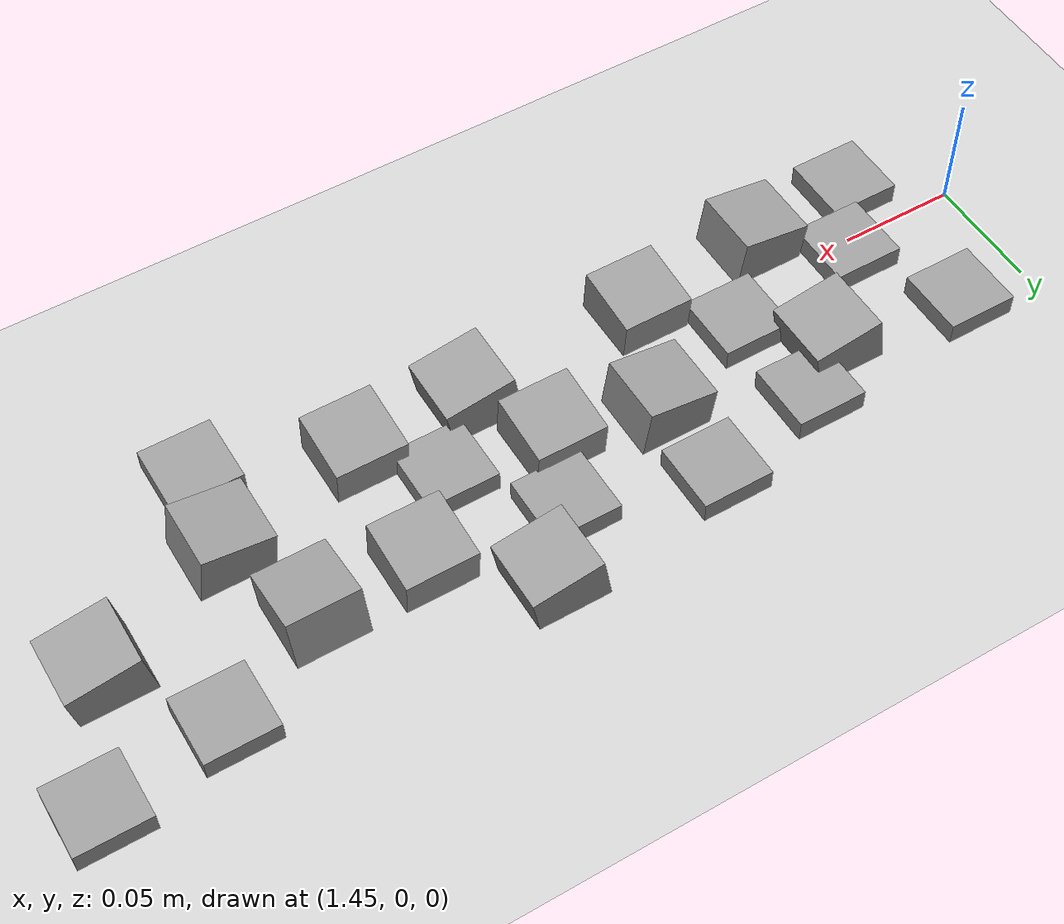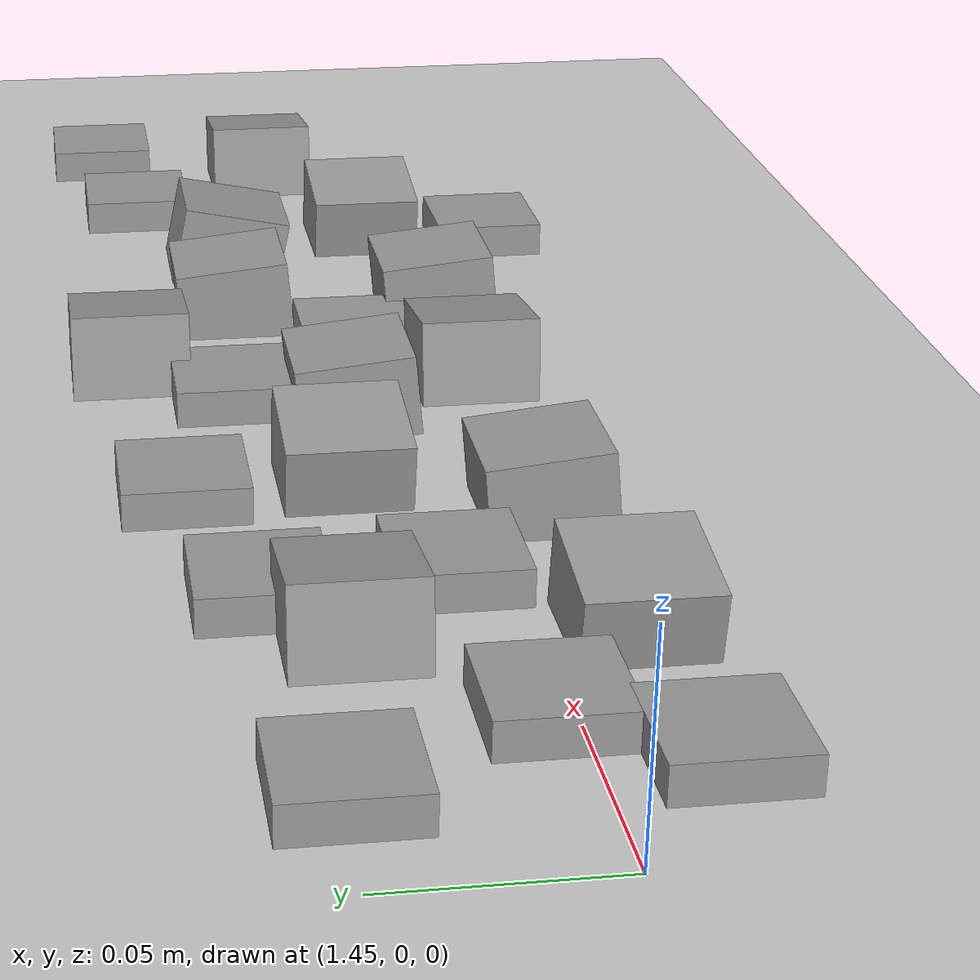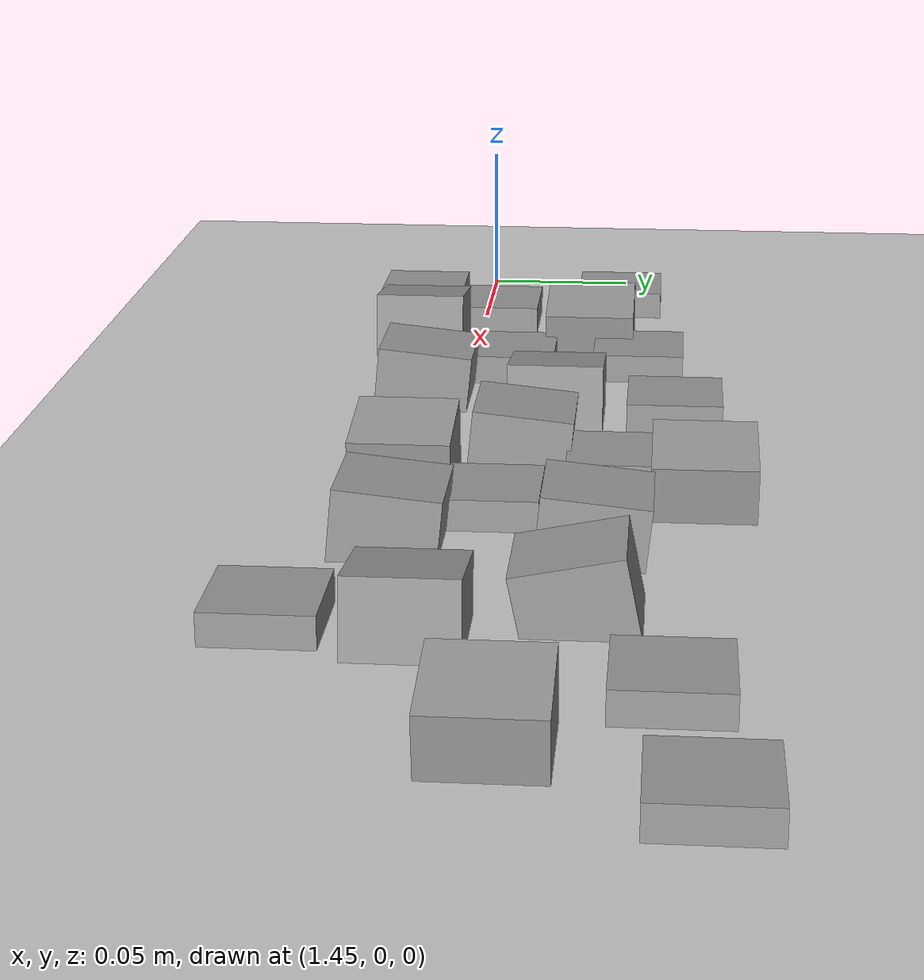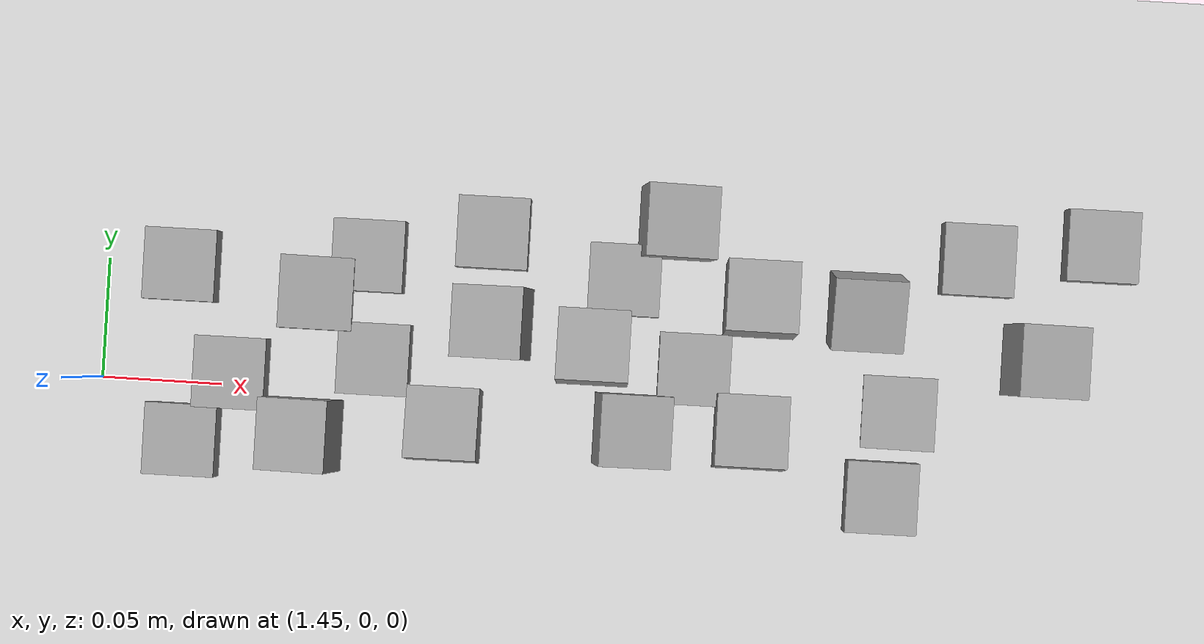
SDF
<sdf version="1.7">
 <world name="default">
  <model name="ground_plane">
   <static>1</static>
   <link name="link">
    <collision name="collision">
     <geometry><plane><normal>0 0 1</normal><size>100 100</size></plane></geometry>
     <surface><friction><ode><mu>100</mu><mu2>50</mu2></ode></friction></surface>
    </collision>
    <visual name="visual">
     <cast_shadows>0</cast_shadows>
     <geometry><plane><normal>0 0 1</normal><size>100 100</size></plane></geometry>
     <material>
      <script><uri>file://media/materials/scripts/gazebo.material</uri><name>Gazebo/Grey</name></script>
     </material>
    </visual>
   </link>
  </model>
  <model name="stone_road">
   <link name="link_0_clone_2_clone">
    <inertial>
     <mass>1</mass>
     <inertia>
      <ixx>0.166667</ixx>
      <ixy>0</ixy>
      <ixz>0</ixz>
      <iyy>0.166667</iyy>
      <iyz>0</iyz>
      <izz>0.166667</izz>
     </inertia>
    </inertial>
    <pose>-0.10771 -0.03187 0.003778 0 0.15 0</pose>
    <kinematic>1</kinematic>
    <visual name="visual">
     <geometry><box><size>0.03 0.03 0.03</size></box></geometry>
     <material>
      <lighting>1</lighting>
      <script><uri>file://media/materials/scripts/gazebo.material</uri><name>Gazebo/Grey</name></script>
      <shader type="pixel"><normal_map>__default__</normal_map></shader>
      <ambient>0.3 0.3 0.3 1</ambient>
      <diffuse>0.7 0.7 0.7 1</diffuse>
      <specular>0.01 0.01 0.01 1</specular>
      <emissive>0 0 0 1</emissive>
     </material>
    </visual>
    <collision name="collision">
     <geometry><box><size>0.03 0.03 0.03</size></box></geometry>
     <surface>
      <friction>
       <ode><mu>1</mu><mu2>1</mu2><fdir1>0 0 0</fdir1><slip1>0</slip1><slip2>0</slip2></ode>
       <torsional>
        <coefficient>1</coefficient>
        <patch_radius>0</patch_radius>
        <surface_radius>0</surface_radius>
        <use_patch_radius>1</use_patch_radius>
        <ode><slip>0</slip></ode>
       </torsional>
      </friction>
      <bounce><restitution_coefficient>0</restitution_coefficient><threshold>1e+06</threshold></bounce>
      <contact>
       <collide_without_contact>0</collide_without_contact>
       <collide_without_contact_bitmask>1</collide_without_contact_bitmask>
       <collide_bitmask>1</collide_bitmask>
       <ode>
        <soft_cfm>0</soft_cfm>
        <soft_erp>0.2</soft_erp>
        <kp>1e+13</kp>
        <kd>1</kd>
        <max_vel>0.01</max_vel>
        <min_depth>0</min_depth>
       </ode>
       <bullet>
        <split_impulse>1</split_impulse>
        <split_impulse_penetration_threshold>-0.01</split_impulse_penetration_threshold>
        <soft_cfm>0</soft_cfm>
        <soft_erp>0.2</soft_erp>
        <kp>1e+13</kp>
        <kd>1</kd>
       </bullet>
      </contact>
     </surface>
    </collision>
   </link>
   <link name="link_0_clone_2_clone_0">
    <inertial>
     <mass>1</mass>
     <inertia>
      <ixx>0.166667</ixx>
      <ixy>0</ixy>
      <ixz>0</ixz>
      <iyy>0.166667</iyy>
      <iyz>0</iyz>
      <izz>0.166667</izz>
     </inertia>
    </inertial>
    <pose>0.026852 -0.0813 0.003778 0 0.15 0</pose>
    <kinematic>1</kinematic>
    <visual name="visual">
     <geometry><box><size>0.03 0.03 0.03</size></box></geometry>
     <material>
      <lighting>1</lighting>
      <script><uri>file://media/materials/scripts/gazebo.material</uri><name>Gazebo/Grey</name></script>
      <shader type="pixel"><normal_map>__default__</normal_map></shader>
      <ambient>0.3 0.3 0.3 1</ambient>
      <diffuse>0.7 0.7 0.7 1</diffuse>
      <specular>0.01 0.01 0.01 1</specular>
      <emissive>0 0 0 1</emissive>
     </material>
    </visual>
    <collision name="collision">
     <geometry><box><size>0.03 0.03 0.03</size></box></geometry>
     <surface>
      <friction>
       <ode><mu>1</mu><mu2>1</mu2><fdir1>0 0 0</fdir1><slip1>0</slip1><slip2>0</slip2></ode>
       <torsional>
        <coefficient>1</coefficient>
        <patch_radius>0</patch_radius>
        <surface_radius>0</surface_radius>
        <use_patch_radius>1</use_patch_radius>
        <ode><slip>0</slip></ode>
       </torsional>
      </friction>
      <bounce><restitution_coefficient>0</restitution_coefficient><threshold>1e+06</threshold></bounce>
      <contact>
       <collide_without_contact>0</collide_without_contact>
       <collide_without_contact_bitmask>1</collide_without_contact_bitmask>
       <collide_bitmask>1</collide_bitmask>
       <ode>
        <soft_cfm>0</soft_cfm>
        <soft_erp>0.2</soft_erp>
        <kp>1e+13</kp>
        <kd>1</kd>
        <max_vel>0.01</max_vel>
        <min_depth>0</min_depth>
       </ode>
       <bullet>
        <split_impulse>1</split_impulse>
        <split_impulse_penetration_threshold>-0.01</split_impulse_penetration_threshold>
        <soft_cfm>0</soft_cfm>
        <soft_erp>0.2</soft_erp>
        <kp>1e+13</kp>
        <kd>1</kd>
       </bullet>
      </contact>
     </surface>
    </collision>
   </link>
   <link name="link_0_clone_2_clone_1">
    <inertial>
     <mass>1</mass>
     <inertia>
      <ixx>0.166667</ixx>
      <ixy>0</ixy>
      <ixz>0</ixz>
      <iyy>0.166667</iyy>
      <iyz>0</iyz>
      <izz>0.166667</izz>
     </inertia>
    </inertial>
    <pose>0.041447 0.006316 0.003778 0 0.15 0</pose>
    <kinematic>1</kinematic>
    <visual name="visual">
     <geometry><box><size>0.03 0.03 0.03</size></box></geometry>
     <material>
      <lighting>1</lighting>
      <script><uri>file://media/materials/scripts/gazebo.material</uri><name>Gazebo/Grey</name></script>
      <shader type="pixel"><normal_map>__default__</normal_map></shader>
      <ambient>0.3 0.3 0.3 1</ambient>
      <diffuse>0.7 0.7 0.7 1</diffuse>
      <specular>0.01 0.01 0.01 1</specular>
      <emissive>0 0 0 1</emissive>
     </material>
    </visual>
    <collision name="collision">
     <geometry><box><size>0.03 0.03 0.03</size></box></geometry>
     <surface>
      <friction>
       <ode><mu>1</mu><mu2>1</mu2><fdir1>0 0 0</fdir1><slip1>0</slip1><slip2>0</slip2></ode>
       <torsional>
        <coefficient>1</coefficient>
        <patch_radius>0</patch_radius>
        <surface_radius>0</surface_radius>
        <use_patch_radius>1</use_patch_radius>
        <ode><slip>0</slip></ode>
       </torsional>
      </friction>
      <bounce><restitution_coefficient>0</restitution_coefficient><threshold>1e+06</threshold></bounce>
      <contact>
       <collide_without_contact>0</collide_without_contact>
       <collide_without_contact_bitmask>1</collide_without_contact_bitmask>
       <collide_bitmask>1</collide_bitmask>
       <ode>
        <soft_cfm>0</soft_cfm>
        <soft_erp>0.2</soft_erp>
        <kp>1e+13</kp>
        <kd>1</kd>
        <max_vel>0.01</max_vel>
        <min_depth>0</min_depth>
       </ode>
       <bullet>
        <split_impulse>1</split_impulse>
        <split_impulse_penetration_threshold>-0.01</split_impulse_penetration_threshold>
        <soft_cfm>0</soft_cfm>
        <soft_erp>0.2</soft_erp>
        <kp>1e+13</kp>
        <kd>1</kd>
       </bullet>
      </contact>
     </surface>
    </collision>
   </link>
   <link name="link_0_clone_2_clone_2_clone_0">
    <inertial>
     <mass>1</mass>
     <inertia>
      <ixx>0.166667</ixx>
      <ixy>0</ixy>
      <ixz>0</ixz>
      <iyy>0.166667</iyy>
      <iyz>0</iyz>
      <izz>0.166667</izz>
     </inertia>
    </inertial>
    <pose>-0.032874 -0.039714 0.003778 0 -0.15 0</pose>
    <kinematic>1</kinematic>
    <visual name="visual">
     <geometry><box><size>0.03 0.03 0.03</size></box></geometry>
     <material>
      <lighting>1</lighting>
      <script><uri>file://media/materials/scripts/gazebo.material</uri><name>Gazebo/Grey</name></script>
      <shader type="pixel"><normal_map>__default__</normal_map></shader>
      <ambient>0.3 0.3 0.3 1</ambient>
      <diffuse>0.7 0.7 0.7 1</diffuse>
      <specular>0.01 0.01 0.01 1</specular>
      <emissive>0 0 0 1</emissive>
     </material>
    </visual>
    <collision name="collision">
     <geometry><box><size>0.03 0.03 0.03</size></box></geometry>
     <surface>
      <friction>
       <ode><mu>1</mu><mu2>1</mu2><fdir1>0 0 0</fdir1><slip1>0</slip1><slip2>0</slip2></ode>
       <torsional>
        <coefficient>1</coefficient>
        <patch_radius>0</patch_radius>
        <surface_radius>0</surface_radius>
        <use_patch_radius>1</use_patch_radius>
        <ode><slip>0</slip></ode>
       </torsional>
      </friction>
      <bounce><restitution_coefficient>0</restitution_coefficient><threshold>1e+06</threshold></bounce>
      <contact>
       <collide_without_contact>0</collide_without_contact>
       <collide_without_contact_bitmask>1</collide_without_contact_bitmask>
       <collide_bitmask>1</collide_bitmask>
       <ode>
        <soft_cfm>0</soft_cfm>
        <soft_erp>0.2</soft_erp>
        <kp>1e+13</kp>
        <kd>1</kd>
        <max_vel>0.01</max_vel>
        <min_depth>0</min_depth>
       </ode>
       <bullet>
        <split_impulse>1</split_impulse>
        <split_impulse_penetration_threshold>-0.01</split_impulse_penetration_threshold>
        <soft_cfm>0</soft_cfm>
        <soft_erp>0.2</soft_erp>
        <kp>1e+13</kp>
        <kd>1</kd>
       </bullet>
      </contact>
     </surface>
    </collision>
   </link>
   <link name="link_0_clone_2_clone_2_clone_13_clone_clone_16_clone_10">
    <inertial>
     <mass>1</mass>
     <inertia>
      <ixx>0.166667</ixx>
      <ixy>0</ixy>
      <ixz>0</ixz>
      <iyy>0.166667</iyy>
      <iyz>0</iyz>
      <izz>0.166667</izz>
     </inertia>
    </inertial>
    <pose>-0.082186 -0.05781 -0.006222 0 -0 0</pose>
    <kinematic>1</kinematic>
    <visual name="visual">
     <geometry><box><size>0.03 0.03 0.03</size></box></geometry>
     <material>
      <lighting>1</lighting>
      <script><uri>file://media/materials/scripts/gazebo.material</uri><name>Gazebo/Grey</name></script>
      <shader type="pixel"><normal_map>__default__</normal_map></shader>
      <ambient>0.3 0.3 0.3 1</ambient>
      <diffuse>0.7 0.7 0.7 1</diffuse>
      <specular>0.01 0.01 0.01 1</specular>
      <emissive>0 0 0 1</emissive>
     </material>
    </visual>
    <collision name="collision">
     <geometry><box><size>0.03 0.03 0.03</size></box></geometry>
     <surface>
      <friction>
       <ode><mu>1</mu><mu2>1</mu2><fdir1>0 0 0</fdir1><slip1>0</slip1><slip2>0</slip2></ode>
       <torsional>
        <coefficient>1</coefficient>
        <patch_radius>0</patch_radius>
        <surface_radius>0</surface_radius>
        <use_patch_radius>1</use_patch_radius>
        <ode><slip>0</slip></ode>
       </torsional>
      </friction>
      <bounce><restitution_coefficient>0</restitution_coefficient><threshold>1e+06</threshold></bounce>
      <contact>
       <collide_without_contact>0</collide_without_contact>
       <collide_without_contact_bitmask>1</collide_without_contact_bitmask>
       <collide_bitmask>1</collide_bitmask>
       <ode>
        <soft_cfm>0</soft_cfm>
        <soft_erp>0.2</soft_erp>
        <kp>1e+13</kp>
        <kd>1</kd>
        <max_vel>0.01</max_vel>
        <min_depth>0</min_depth>
       </ode>
       <bullet>
        <split_impulse>1</split_impulse>
        <split_impulse_penetration_threshold>-0.01</split_impulse_penetration_threshold>
        <soft_cfm>0</soft_cfm>
        <soft_erp>0.2</soft_erp>
        <kp>1e+13</kp>
        <kd>1</kd>
       </bullet>
      </contact>
     </surface>
    </collision>
   </link>
   <link name="link_0_clone_2_clone_2_clone_13_clone_clone_16_clone_11">
    <inertial>
     <mass>1</mass>
     <inertia>
      <ixx>0.166667</ixx>
      <ixy>0</ixy>
      <ixz>0</ixz>
      <iyy>0.166667</iyy>
      <iyz>0</iyz>
      <izz>0.166667</izz>
     </inertia>
    </inertial>
    <pose>-0.141844 -0.066911 -0.006222 0 -0 0</pose>
    <kinematic>1</kinematic>
    <visual name="visual">
     <geometry><box><size>0.03 0.03 0.03</size></box></geometry>
     <material>
      <lighting>1</lighting>
      <script><uri>file://media/materials/scripts/gazebo.material</uri><name>Gazebo/Grey</name></script>
      <shader type="pixel"><normal_map>__default__</normal_map></shader>
      <ambient>0.3 0.3 0.3 1</ambient>
      <diffuse>0.7 0.7 0.7 1</diffuse>
      <specular>0.01 0.01 0.01 1</specular>
      <emissive>0 0 0 1</emissive>
     </material>
    </visual>
    <collision name="collision">
     <geometry><box><size>0.03 0.03 0.03</size></box></geometry>
     <surface>
      <friction>
       <ode><mu>1</mu><mu2>1</mu2><fdir1>0 0 0</fdir1><slip1>0</slip1><slip2>0</slip2></ode>
       <torsional>
        <coefficient>1</coefficient>
        <patch_radius>0</patch_radius>
        <surface_radius>0</surface_radius>
        <use_patch_radius>1</use_patch_radius>
        <ode><slip>0</slip></ode>
       </torsional>
      </friction>
      <bounce><restitution_coefficient>0</restitution_coefficient><threshold>1e+06</threshold></bounce>
      <contact>
       <collide_without_contact>0</collide_without_contact>
       <collide_without_contact_bitmask>1</collide_without_contact_bitmask>
       <collide_bitmask>1</collide_bitmask>
       <ode>
        <soft_cfm>0</soft_cfm>
        <soft_erp>0.2</soft_erp>
        <kp>1e+13</kp>
        <kd>1</kd>
        <max_vel>0.01</max_vel>
        <min_depth>0</min_depth>
       </ode>
       <bullet>
        <split_impulse>1</split_impulse>
        <split_impulse_penetration_threshold>-0.01</split_impulse_penetration_threshold>
        <soft_cfm>0</soft_cfm>
        <soft_erp>0.2</soft_erp>
        <kp>1e+13</kp>
        <kd>1</kd>
       </bullet>
      </contact>
     </surface>
    </collision>
   </link>
   <link name="link_0_clone_2_clone_2_clone_13_clone_clone_16_clone_12">
    <inertial>
     <mass>1</mass>
     <inertia>
      <ixx>0.166667</ixx>
      <ixy>0</ixy>
      <ixz>0</ixz>
      <iyy>0.166667</iyy>
      <iyz>0</iyz>
      <izz>0.166667</izz>
     </inertia>
    </inertial>
    <pose>-0.164908 -0.022947 -0.006222 0 -0 0</pose>
    <kinematic>1</kinematic>
    <visual name="visual">
     <geometry><box><size>0.03 0.03 0.03</size></box></geometry>
     <material>
      <lighting>1</lighting>
      <script><uri>file://media/materials/scripts/gazebo.material</uri><name>Gazebo/Grey</name></script>
      <shader type="pixel"><normal_map>__default__</normal_map></shader>
      <ambient>0.3 0.3 0.3 1</ambient>
      <diffuse>0.7 0.7 0.7 1</diffuse>
      <specular>0.01 0.01 0.01 1</specular>
      <emissive>0 0 0 1</emissive>
     </material>
    </visual>
    <collision name="collision">
     <geometry><box><size>0.03 0.03 0.03</size></box></geometry>
     <surface>
      <friction>
       <ode><mu>1</mu><mu2>1</mu2><fdir1>0 0 0</fdir1><slip1>0</slip1><slip2>0</slip2></ode>
       <torsional>
        <coefficient>1</coefficient>
        <patch_radius>0</patch_radius>
        <surface_radius>0</surface_radius>
        <use_patch_radius>1</use_patch_radius>
        <ode><slip>0</slip></ode>
       </torsional>
      </friction>
      <bounce><restitution_coefficient>0</restitution_coefficient><threshold>1e+06</threshold></bounce>
      <contact>
       <collide_without_contact>0</collide_without_contact>
       <collide_without_contact_bitmask>1</collide_without_contact_bitmask>
       <collide_bitmask>1</collide_bitmask>
       <ode>
        <soft_cfm>0</soft_cfm>
        <soft_erp>0.2</soft_erp>
        <kp>1e+13</kp>
        <kd>1</kd>
        <max_vel>0.01</max_vel>
        <min_depth>0</min_depth>
       </ode>
       <bullet>
        <split_impulse>1</split_impulse>
        <split_impulse_penetration_threshold>-0.01</split_impulse_penetration_threshold>
        <soft_cfm>0</soft_cfm>
        <soft_erp>0.2</soft_erp>
        <kp>1e+13</kp>
        <kd>1</kd>
       </bullet>
      </contact>
     </surface>
    </collision>
   </link>
   <link name="link_0_clone_2_clone_2_clone_13_clone_clone_16_clone_13">
    <inertial>
     <mass>1</mass>
     <inertia>
      <ixx>0.166667</ixx>
      <ixy>0</ixy>
      <ixz>0</ixz>
      <iyy>0.166667</iyy>
      <iyz>0</iyz>
      <izz>0.166667</izz>
     </inertia>
    </inertial>
    <pose>0.168013 -0.00203 -0.006222 0 -0 0</pose>
    <kinematic>1</kinematic>
    <visual name="visual">
     <geometry><box><size>0.03 0.03 0.03</size></box></geometry>
     <material>
      <lighting>1</lighting>
      <script><uri>file://media/materials/scripts/gazebo.material</uri><name>Gazebo/Grey</name></script>
      <shader type="pixel"><normal_map>__default__</normal_map></shader>
      <ambient>0.3 0.3 0.3 1</ambient>
      <diffuse>0.7 0.7 0.7 1</diffuse>
      <specular>0.01 0.01 0.01 1</specular>
      <emissive>0 0 0 1</emissive>
     </material>
    </visual>
    <collision name="collision">
     <geometry><box><size>0.03 0.03 0.03</size></box></geometry>
     <surface>
      <friction>
       <ode><mu>1</mu><mu2>1</mu2><fdir1>0 0 0</fdir1><slip1>0</slip1><slip2>0</slip2></ode>
       <torsional>
        <coefficient>1</coefficient>
        <patch_radius>0</patch_radius>
        <surface_radius>0</surface_radius>
        <use_patch_radius>1</use_patch_radius>
        <ode><slip>0</slip></ode>
       </torsional>
      </friction>
      <bounce><restitution_coefficient>0</restitution_coefficient><threshold>1e+06</threshold></bounce>
      <contact>
       <collide_without_contact>0</collide_without_contact>
       <collide_without_contact_bitmask>1</collide_without_contact_bitmask>
       <collide_bitmask>1</collide_bitmask>
       <ode>
        <soft_cfm>0</soft_cfm>
        <soft_erp>0.2</soft_erp>
        <kp>1e+13</kp>
        <kd>1</kd>
        <max_vel>0.01</max_vel>
        <min_depth>0</min_depth>
       </ode>
       <bullet>
        <split_impulse>1</split_impulse>
        <split_impulse_penetration_threshold>-0.01</split_impulse_penetration_threshold>
        <soft_cfm>0</soft_cfm>
        <soft_erp>0.2</soft_erp>
        <kp>1e+13</kp>
        <kd>1</kd>
       </bullet>
      </contact>
     </surface>
    </collision>
   </link>
   <link name="link_0_clone_2_clone_2_clone_13_clone_clone_16_clone_14">
    <inertial>
     <mass>1</mass>
     <inertia>
      <ixx>0.166667</ixx>
      <ixy>0</ixy>
      <ixz>0</ixz>
      <iyy>0.166667</iyy>
      <iyz>0</iyz>
      <izz>0.166667</izz>
     </inertia>
    </inertial>
    <pose>0.051911 -0.054424 -0.006222 0 -0 0</pose>
    <kinematic>1</kinematic>
    <visual name="visual">
     <geometry><box><size>0.03 0.03 0.03</size></box></geometry>
     <material>
      <lighting>1</lighting>
      <script><uri>file://media/materials/scripts/gazebo.material</uri><name>Gazebo/Grey</name></script>
      <shader type="pixel"><normal_map>__default__</normal_map></shader>
      <ambient>0.3 0.3 0.3 1</ambient>
      <diffuse>0.7 0.7 0.7 1</diffuse>
      <specular>0.01 0.01 0.01 1</specular>
      <emissive>0 0 0 1</emissive>
     </material>
    </visual>
    <collision name="collision">
     <geometry><box><size>0.03 0.03 0.03</size></box></geometry>
     <surface>
      <friction>
       <ode><mu>1</mu><mu2>1</mu2><fdir1>0 0 0</fdir1><slip1>0</slip1><slip2>0</slip2></ode>
       <torsional>
        <coefficient>1</coefficient>
        <patch_radius>0</patch_radius>
        <surface_radius>0</surface_radius>
        <use_patch_radius>1</use_patch_radius>
        <ode><slip>0</slip></ode>
       </torsional>
      </friction>
      <bounce><restitution_coefficient>0</restitution_coefficient><threshold>1e+06</threshold></bounce>
      <contact>
       <collide_without_contact>0</collide_without_contact>
       <collide_without_contact_bitmask>1</collide_without_contact_bitmask>
       <collide_bitmask>1</collide_bitmask>
       <ode>
        <soft_cfm>0</soft_cfm>
        <soft_erp>0.2</soft_erp>
        <kp>1e+13</kp>
        <kd>1</kd>
        <max_vel>0.01</max_vel>
        <min_depth>0</min_depth>
       </ode>
       <bullet>
        <split_impulse>1</split_impulse>
        <split_impulse_penetration_threshold>-0.01</split_impulse_penetration_threshold>
        <soft_cfm>0</soft_cfm>
        <soft_erp>0.2</soft_erp>
        <kp>1e+13</kp>
        <kd>1</kd>
       </bullet>
      </contact>
     </surface>
    </collision>
   </link>
   <link name="link_0_clone_2_clone_2_clone_13_clone_clone_16_clone_15">
    <inertial>
     <mass>1</mass>
     <inertia>
      <ixx>0.166667</ixx>
      <ixy>0</ixy>
      <ixz>0</ixz>
      <iyy>0.166667</iyy>
      <iyz>0</iyz>
      <izz>0.166667</izz>
     </inertia>
    </inertial>
    <pose>0.133032 -0.103459 -0.006222 0 -0 0</pose>
    <kinematic>1</kinematic>
    <visual name="visual">
     <geometry><box><size>0.03 0.03 0.03</size></box></geometry>
     <material>
      <lighting>1</lighting>
      <script><uri>file://media/materials/scripts/gazebo.material</uri><name>Gazebo/Grey</name></script>
      <shader type="pixel"><normal_map>__default__</normal_map></shader>
      <ambient>0.3 0.3 0.3 1</ambient>
      <diffuse>0.7 0.7 0.7 1</diffuse>
      <specular>0.01 0.01 0.01 1</specular>
      <emissive>0 0 0 1</emissive>
     </material>
    </visual>
    <collision name="collision">
     <geometry><box><size>0.03 0.03 0.03</size></box></geometry>
     <surface>
      <friction>
       <ode><mu>1</mu><mu2>1</mu2><fdir1>0 0 0</fdir1><slip1>0</slip1><slip2>0</slip2></ode>
       <torsional>
        <coefficient>1</coefficient>
        <patch_radius>0</patch_radius>
        <surface_radius>0</surface_radius>
        <use_patch_radius>1</use_patch_radius>
        <ode><slip>0</slip></ode>
       </torsional>
      </friction>
      <bounce><restitution_coefficient>0</restitution_coefficient><threshold>1e+06</threshold></bounce>
      <contact>
       <collide_without_contact>0</collide_without_contact>
       <collide_without_contact_bitmask>1</collide_without_contact_bitmask>
       <collide_bitmask>1</collide_bitmask>
       <ode>
        <soft_cfm>0</soft_cfm>
        <soft_erp>0.2</soft_erp>
        <kp>1e+13</kp>
        <kd>1</kd>
        <max_vel>0.01</max_vel>
        <min_depth>0</min_depth>
       </ode>
       <bullet>
        <split_impulse>1</split_impulse>
        <split_impulse_penetration_threshold>-0.01</split_impulse_penetration_threshold>
        <soft_cfm>0</soft_cfm>
        <soft_erp>0.2</soft_erp>
        <kp>1e+13</kp>
        <kd>1</kd>
       </bullet>
      </contact>
     </surface>
    </collision>
   </link>
   <link name="link_0_clone_2_clone_2_clone_13_clone_clone_16_clone_19">
    <inertial>
     <mass>1</mass>
     <inertia>
      <ixx>0.166667</ixx>
      <ixy>0</ixy>
      <ixz>0</ixz>
      <iyy>0.166667</iyy>
      <iyz>0</iyz>
      <izz>0.166667</izz>
     </inertia>
    </inertial>
    <pose>0.219442 0.006622 -0.006222 0 -0 0</pose>
    <kinematic>1</kinematic>
    <visual name="visual">
     <geometry><box><size>0.03 0.03 0.03</size></box></geometry>
     <material>
      <lighting>1</lighting>
      <script><uri>file://media/materials/scripts/gazebo.material</uri><name>Gazebo/Grey</name></script>
      <shader type="pixel"><normal_map>__default__</normal_map></shader>
      <ambient>0.3 0.3 0.3 1</ambient>
      <diffuse>0.7 0.7 0.7 1</diffuse>
      <specular>0.01 0.01 0.01 1</specular>
      <emissive>0 0 0 1</emissive>
     </material>
    </visual>
    <collision name="collision">
     <geometry><box><size>0.03 0.03 0.03</size></box></geometry>
     <surface>
      <friction>
       <ode><mu>1</mu><mu2>1</mu2><fdir1>0 0 0</fdir1><slip1>0</slip1><slip2>0</slip2></ode>
       <torsional>
        <coefficient>1</coefficient>
        <patch_radius>0</patch_radius>
        <surface_radius>0</surface_radius>
        <use_patch_radius>1</use_patch_radius>
        <ode><slip>0</slip></ode>
       </torsional>
      </friction>
      <bounce><restitution_coefficient>0</restitution_coefficient><threshold>1e+06</threshold></bounce>
      <contact>
       <collide_without_contact>0</collide_without_contact>
       <collide_without_contact_bitmask>1</collide_without_contact_bitmask>
       <collide_bitmask>1</collide_bitmask>
       <ode>
        <soft_cfm>0</soft_cfm>
        <soft_erp>0.2</soft_erp>
        <kp>1e+13</kp>
        <kd>1</kd>
        <max_vel>0.01</max_vel>
        <min_depth>0</min_depth>
       </ode>
       <bullet>
        <split_impulse>1</split_impulse>
        <split_impulse_penetration_threshold>-0.01</split_impulse_penetration_threshold>
        <soft_cfm>0</soft_cfm>
        <soft_erp>0.2</soft_erp>
        <kp>1e+13</kp>
        <kd>1</kd>
       </bullet>
      </contact>
     </surface>
    </collision>
   </link>
   <link name="link_0_clone_2_clone_2_clone_13_clone_clone_16_clone_26">
    <inertial>
     <mass>1</mass>
     <inertia>
      <ixx>0.166667</ixx>
      <ixy>0</ixy>
      <ixz>0</ixz>
      <iyy>0.166667</iyy>
      <iyz>0</iyz>
      <izz>0.166667</izz>
     </inertia>
    </inertial>
    <pose>-0.035162 -0.002247 -0.006222 0 -0 0</pose>
    <kinematic>1</kinematic>
    <visual name="visual">
     <geometry><box><size>0.03 0.03 0.03</size></box></geometry>
     <material>
      <lighting>1</lighting>
      <script><uri>file://media/materials/scripts/gazebo.material</uri><name>Gazebo/Grey</name></script>
      <shader type="pixel"><normal_map>__default__</normal_map></shader>
      <ambient>0.3 0.3 0.3 1</ambient>
      <diffuse>0.7 0.7 0.7 1</diffuse>
      <specular>0.01 0.01 0.01 1</specular>
      <emissive>0 0 0 1</emissive>
     </material>
    </visual>
    <collision name="collision">
     <geometry><box><size>0.03 0.03 0.03</size></box></geometry>
     <surface>
      <friction>
       <ode><mu>1</mu><mu2>1</mu2><fdir1>0 0 0</fdir1><slip1>0</slip1><slip2>0</slip2></ode>
       <torsional>
        <coefficient>1</coefficient>
        <patch_radius>0</patch_radius>
        <surface_radius>0</surface_radius>
        <use_patch_radius>1</use_patch_radius>
        <ode><slip>0</slip></ode>
       </torsional>
      </friction>
      <bounce><restitution_coefficient>0</restitution_coefficient><threshold>1e+06</threshold></bounce>
      <contact>
       <collide_without_contact>0</collide_without_contact>
       <collide_without_contact_bitmask>1</collide_without_contact_bitmask>
       <collide_bitmask>1</collide_bitmask>
       <ode>
        <soft_cfm>0</soft_cfm>
        <soft_erp>0.2</soft_erp>
        <kp>1e+13</kp>
        <kd>1</kd>
        <max_vel>0.01</max_vel>
        <min_depth>0</min_depth>
       </ode>
       <bullet>
        <split_impulse>1</split_impulse>
        <split_impulse_penetration_threshold>-0.01</split_impulse_penetration_threshold>
        <soft_cfm>0</soft_cfm>
        <soft_erp>0.2</soft_erp>
        <kp>1e+13</kp>
        <kd>1</kd>
       </bullet>
      </contact>
     </surface>
    </collision>
   </link>
   <link name="link_0_clone_2_clone_2_clone_13_clone_clone_16_clone_30">
    <inertial>
     <mass>1</mass>
     <inertia>
      <ixx>0.166667</ixx>
      <ixy>0</ixy>
      <ixz>0</ixz>
      <iyy>0.166667</iyy>
      <iyz>0</iyz>
      <izz>0.166667</izz>
     </inertia>
    </inertial>
    <pose>-0.160879 -0.095951 -0.006222 0 -0 0</pose>
    <kinematic>1</kinematic>
    <visual name="visual">
     <geometry><box><size>0.03 0.03 0.03</size></box></geometry>
     <material>
      <lighting>1</lighting>
      <script><uri>file://media/materials/scripts/gazebo.material</uri><name>Gazebo/Grey</name></script>
      <shader type="pixel"><normal_map>__default__</normal_map></shader>
      <ambient>0.3 0.3 0.3 1</ambient>
      <diffuse>0.7 0.7 0.7 1</diffuse>
      <specular>0.01 0.01 0.01 1</specular>
      <emissive>0 0 0 1</emissive>
     </material>
    </visual>
    <collision name="collision">
     <geometry><box><size>0.03 0.03 0.03</size></box></geometry>
     <surface>
      <friction>
       <ode><mu>1</mu><mu2>1</mu2><fdir1>0 0 0</fdir1><slip1>0</slip1><slip2>0</slip2></ode>
       <torsional>
        <coefficient>1</coefficient>
        <patch_radius>0</patch_radius>
        <surface_radius>0</surface_radius>
        <use_patch_radius>1</use_patch_radius>
        <ode><slip>0</slip></ode>
       </torsional>
      </friction>
      <bounce><restitution_coefficient>0</restitution_coefficient><threshold>1e+06</threshold></bounce>
      <contact>
       <collide_without_contact>0</collide_without_contact>
       <collide_without_contact_bitmask>1</collide_without_contact_bitmask>
       <collide_bitmask>1</collide_bitmask>
       <ode>
        <soft_cfm>0</soft_cfm>
        <soft_erp>0.2</soft_erp>
        <kp>1e+13</kp>
        <kd>1</kd>
        <max_vel>0.01</max_vel>
        <min_depth>0</min_depth>
       </ode>
       <bullet>
        <split_impulse>1</split_impulse>
        <split_impulse_penetration_threshold>-0.01</split_impulse_penetration_threshold>
        <soft_cfm>0</soft_cfm>
        <soft_erp>0.2</soft_erp>
        <kp>1e+13</kp>
        <kd>1</kd>
       </bullet>
      </contact>
     </surface>
    </collision>
   </link>
   <link name="link_0_clone_2_clone_2_clone_13_clone_clone_16_clone_5">
    <inertial>
     <mass>1</mass>
     <inertia>
      <ixx>0.166667</ixx>
      <ixy>0</ixy>
      <ixz>0</ixz>
      <iyy>0.166667</iyy>
      <iyz>0</iyz>
      <izz>0.166667</izz>
     </inertia>
    </inertial>
    <pose>-0.086674 -0.014784 -0.006222 0 -0 0</pose>
    <kinematic>1</kinematic>
    <visual name="visual">
     <geometry><box><size>0.03 0.03 0.03</size></box></geometry>
     <material>
      <lighting>1</lighting>
      <script><uri>file://media/materials/scripts/gazebo.material</uri><name>Gazebo/Grey</name></script>
      <shader type="pixel"><normal_map>__default__</normal_map></shader>
      <ambient>0.3 0.3 0.3 1</ambient>
      <diffuse>0.7 0.7 0.7 1</diffuse>
      <specular>0.01 0.01 0.01 1</specular>
      <emissive>0 0 0 1</emissive>
     </material>
    </visual>
    <collision name="collision">
     <geometry><box><size>0.03 0.03 0.03</size></box></geometry>
     <surface>
      <friction>
       <ode><mu>1</mu><mu2>1</mu2><fdir1>0 0 0</fdir1><slip1>0</slip1><slip2>0</slip2></ode>
       <torsional>
        <coefficient>1</coefficient>
        <patch_radius>0</patch_radius>
        <surface_radius>0</surface_radius>
        <use_patch_radius>1</use_patch_radius>
        <ode><slip>0</slip></ode>
       </torsional>
      </friction>
      <bounce><restitution_coefficient>0</restitution_coefficient><threshold>1e+06</threshold></bounce>
      <contact>
       <collide_without_contact>0</collide_without_contact>
       <collide_without_contact_bitmask>1</collide_without_contact_bitmask>
       <collide_bitmask>1</collide_bitmask>
       <ode>
        <soft_cfm>0</soft_cfm>
        <soft_erp>0.2</soft_erp>
        <kp>1e+13</kp>
        <kd>1</kd>
        <max_vel>0.01</max_vel>
        <min_depth>0</min_depth>
       </ode>
       <bullet>
        <split_impulse>1</split_impulse>
        <split_impulse_penetration_threshold>-0.01</split_impulse_penetration_threshold>
        <soft_cfm>0</soft_cfm>
        <soft_erp>0.2</soft_erp>
        <kp>1e+13</kp>
        <kd>1</kd>
       </bullet>
      </contact>
     </surface>
    </collision>
   </link>
   <link name="link_0_clone_2_clone_2_clone_13_clone_clone_16_clone_6">
    <inertial>
     <mass>1</mass>
     <inertia>
      <ixx>0.166667</ixx>
      <ixy>0</ixy>
      <ixz>0</ixz>
      <iyy>0.166667</iyy>
      <iyz>0</iyz>
      <izz>0.166667</izz>
     </inertia>
    </inertial>
    <pose>0.020774 -0.018727 -0.006222 0 -0 0</pose>
    <kinematic>1</kinematic>
    <visual name="visual">
     <geometry><box><size>0.03 0.03 0.03</size></box></geometry>
     <material>
      <lighting>1</lighting>
      <script><uri>file://media/materials/scripts/gazebo.material</uri><name>Gazebo/Grey</name></script>
      <shader type="pixel"><normal_map>__default__</normal_map></shader>
      <ambient>0.3 0.3 0.3 1</ambient>
      <diffuse>0.7 0.7 0.7 1</diffuse>
      <specular>0.01 0.01 0.01 1</specular>
      <emissive>0 0 0 1</emissive>
     </material>
    </visual>
    <collision name="collision">
     <geometry><box><size>0.03 0.03 0.03</size></box></geometry>
     <surface>
      <friction>
       <ode><mu>1</mu><mu2>1</mu2><fdir1>0 0 0</fdir1><slip1>0</slip1><slip2>0</slip2></ode>
       <torsional>
        <coefficient>1</coefficient>
        <patch_radius>0</patch_radius>
        <surface_radius>0</surface_radius>
        <use_patch_radius>1</use_patch_radius>
        <ode><slip>0</slip></ode>
       </torsional>
      </friction>
      <bounce><restitution_coefficient>0</restitution_coefficient><threshold>1e+06</threshold></bounce>
      <contact>
       <collide_without_contact>0</collide_without_contact>
       <collide_without_contact_bitmask>1</collide_without_contact_bitmask>
       <collide_bitmask>1</collide_bitmask>
       <ode>
        <soft_cfm>0</soft_cfm>
        <soft_erp>0.2</soft_erp>
        <kp>1e+13</kp>
        <kd>1</kd>
        <max_vel>0.01</max_vel>
        <min_depth>0</min_depth>
       </ode>
       <bullet>
        <split_impulse>1</split_impulse>
        <split_impulse_penetration_threshold>-0.01</split_impulse_penetration_threshold>
        <soft_cfm>0</soft_cfm>
        <soft_erp>0.2</soft_erp>
        <kp>1e+13</kp>
        <kd>1</kd>
       </bullet>
      </contact>
     </surface>
    </collision>
   </link>
   <link name="link_0_clone_2_clone_2_clone_13_clone_clone_4">
    <inertial>
     <mass>1</mass>
     <inertia>
      <ixx>0.166667</ixx>
      <ixy>0</ixy>
      <ixz>0</ixz>
      <iyy>0.166667</iyy>
      <iyz>0</iyz>
      <izz>0.166667</izz>
     </inertia>
    </inertial>
    <pose>0.078198 -0.024053 0.003778 -0.1 0 0</pose>
    <kinematic>1</kinematic>
    <visual name="visual">
     <geometry><box><size>0.03 0.03 0.03</size></box></geometry>
     <material>
      <lighting>1</lighting>
      <script><uri>file://media/materials/scripts/gazebo.material</uri><name>Gazebo/Grey</name></script>
      <shader type="pixel"><normal_map>__default__</normal_map></shader>
      <ambient>0.3 0.3 0.3 1</ambient>
      <diffuse>0.7 0.7 0.7 1</diffuse>
      <specular>0.01 0.01 0.01 1</specular>
      <emissive>0 0 0 1</emissive>
     </material>
    </visual>
    <collision name="collision">
     <geometry><box><size>0.03 0.03 0.03</size></box></geometry>
     <surface>
      <friction>
       <ode><mu>1</mu><mu2>1</mu2><fdir1>0 0 0</fdir1><slip1>0</slip1><slip2>0</slip2></ode>
       <torsional>
        <coefficient>1</coefficient>
        <patch_radius>0</patch_radius>
        <surface_radius>0</surface_radius>
        <use_patch_radius>1</use_patch_radius>
        <ode><slip>0</slip></ode>
       </torsional>
      </friction>
      <bounce><restitution_coefficient>0</restitution_coefficient><threshold>1e+06</threshold></bounce>
      <contact>
       <collide_without_contact>0</collide_without_contact>
       <collide_without_contact_bitmask>1</collide_without_contact_bitmask>
       <collide_bitmask>1</collide_bitmask>
       <ode>
        <soft_cfm>0</soft_cfm>
        <soft_erp>0.2</soft_erp>
        <kp>1e+13</kp>
        <kd>1</kd>
        <max_vel>0.01</max_vel>
        <min_depth>0</min_depth>
       </ode>
       <bullet>
        <split_impulse>1</split_impulse>
        <split_impulse_penetration_threshold>-0.01</split_impulse_penetration_threshold>
        <soft_cfm>0</soft_cfm>
        <soft_erp>0.2</soft_erp>
        <kp>1e+13</kp>
        <kd>1</kd>
       </bullet>
      </contact>
     </surface>
    </collision>
   </link>
   <link name="link_0_clone_2_clone_2_clone_13_clone_clone_5">
    <inertial>
     <mass>1</mass>
     <inertia>
      <ixx>0.166667</ixx>
      <ixy>0</ixy>
      <ixz>0</ixz>
      <iyy>0.166667</iyy>
      <iyz>0</iyz>
      <izz>0.166667</izz>
     </inertia>
    </inertial>
    <pose>0.076743 -0.079785 0.003778 -0.1 0 0</pose>
    <kinematic>1</kinematic>
    <visual name="visual">
     <geometry><box><size>0.03 0.03 0.03</size></box></geometry>
     <material>
      <lighting>1</lighting>
      <script><uri>file://media/materials/scripts/gazebo.material</uri><name>Gazebo/Grey</name></script>
      <shader type="pixel"><normal_map>__default__</normal_map></shader>
      <ambient>0.3 0.3 0.3 1</ambient>
      <diffuse>0.7 0.7 0.7 1</diffuse>
      <specular>0.01 0.01 0.01 1</specular>
      <emissive>0 0 0 1</emissive>
     </material>
    </visual>
    <collision name="collision">
     <geometry><box><size>0.03 0.03 0.03</size></box></geometry>
     <surface>
      <friction>
       <ode><mu>1</mu><mu2>1</mu2><fdir1>0 0 0</fdir1><slip1>0</slip1><slip2>0</slip2></ode>
       <torsional>
        <coefficient>1</coefficient>
        <patch_radius>0</patch_radius>
        <surface_radius>0</surface_radius>
        <use_patch_radius>1</use_patch_radius>
        <ode><slip>0</slip></ode>
       </torsional>
      </friction>
      <bounce><restitution_coefficient>0</restitution_coefficient><threshold>1e+06</threshold></bounce>
      <contact>
       <collide_without_contact>0</collide_without_contact>
       <collide_without_contact_bitmask>1</collide_without_contact_bitmask>
       <collide_bitmask>1</collide_bitmask>
       <ode>
        <soft_cfm>0</soft_cfm>
        <soft_erp>0.2</soft_erp>
        <kp>1e+13</kp>
        <kd>1</kd>
        <max_vel>0.01</max_vel>
        <min_depth>0</min_depth>
       </ode>
       <bullet>
        <split_impulse>1</split_impulse>
        <split_impulse_penetration_threshold>-0.01</split_impulse_penetration_threshold>
        <soft_cfm>0</soft_cfm>
        <soft_erp>0.2</soft_erp>
        <kp>1e+13</kp>
        <kd>1</kd>
       </bullet>
      </contact>
     </surface>
    </collision>
   </link>
   <link name="link_0_clone_2_clone_2_clone_13_clone_clone_6">
    <inertial>
     <mass>1</mass>
     <inertia>
      <ixx>0.166667</ixx>
      <ixy>0</ixy>
      <ixz>0</ixz>
      <iyy>0.166667</iyy>
      <iyz>0</iyz>
      <izz>0.166667</izz>
     </inertia>
    </inertial>
    <pose>0.009445 -0.048118 0.003778 -0.1 0 0</pose>
    <kinematic>1</kinematic>
    <visual name="visual">
     <geometry><box><size>0.03 0.03 0.03</size></box></geometry>
     <material>
      <lighting>1</lighting>
      <script><uri>file://media/materials/scripts/gazebo.material</uri><name>Gazebo/Grey</name></script>
      <shader type="pixel"><normal_map>__default__</normal_map></shader>
      <ambient>0.3 0.3 0.3 1</ambient>
      <diffuse>0.7 0.7 0.7 1</diffuse>
      <specular>0.01 0.01 0.01 1</specular>
      <emissive>0 0 0 1</emissive>
     </material>
    </visual>
    <collision name="collision">
     <geometry><box><size>0.03 0.03 0.03</size></box></geometry>
     <surface>
      <friction>
       <ode><mu>1</mu><mu2>1</mu2><fdir1>0 0 0</fdir1><slip1>0</slip1><slip2>0</slip2></ode>
       <torsional>
        <coefficient>1</coefficient>
        <patch_radius>0</patch_radius>
        <surface_radius>0</surface_radius>
        <use_patch_radius>1</use_patch_radius>
        <ode><slip>0</slip></ode>
       </torsional>
      </friction>
      <bounce><restitution_coefficient>0</restitution_coefficient><threshold>1e+06</threshold></bounce>
      <contact>
       <collide_without_contact>0</collide_without_contact>
       <collide_without_contact_bitmask>1</collide_without_contact_bitmask>
       <collide_bitmask>1</collide_bitmask>
       <ode>
        <soft_cfm>0</soft_cfm>
        <soft_erp>0.2</soft_erp>
        <kp>1e+13</kp>
        <kd>1</kd>
        <max_vel>0.01</max_vel>
        <min_depth>0</min_depth>
       </ode>
       <bullet>
        <split_impulse>1</split_impulse>
        <split_impulse_penetration_threshold>-0.01</split_impulse_penetration_threshold>
        <soft_cfm>0</soft_cfm>
        <soft_erp>0.2</soft_erp>
        <kp>1e+13</kp>
        <kd>1</kd>
       </bullet>
      </contact>
     </surface>
    </collision>
   </link>
   <link name="link_0_clone_2_clone_2_clone_13_clone_clone_8">
    <inertial>
     <mass>1</mass>
     <inertia>
      <ixx>0.166667</ixx>
      <ixy>0</ixy>
      <ixz>0</ixz>
      <iyy>0.166667</iyy>
      <iyz>0</iyz>
      <izz>0.166667</izz>
     </inertia>
    </inertial>
    <pose>-0.051207 -0.083778 0.003778 -0.1 0 0</pose>
    <kinematic>1</kinematic>
    <visual name="visual">
     <geometry><box><size>0.03 0.03 0.03</size></box></geometry>
     <material>
      <lighting>1</lighting>
      <script><uri>file://media/materials/scripts/gazebo.material</uri><name>Gazebo/Grey</name></script>
      <shader type="pixel"><normal_map>__default__</normal_map></shader>
      <ambient>0.3 0.3 0.3 1</ambient>
      <diffuse>0.7 0.7 0.7 1</diffuse>
      <specular>0.01 0.01 0.01 1</specular>
      <emissive>0 0 0 1</emissive>
     </material>
    </visual>
    <collision name="collision">
     <geometry><box><size>0.03 0.03 0.03</size></box></geometry>
     <surface>
      <friction>
       <ode><mu>1</mu><mu2>1</mu2><fdir1>0 0 0</fdir1><slip1>0</slip1><slip2>0</slip2></ode>
       <torsional>
        <coefficient>1</coefficient>
        <patch_radius>0</patch_radius>
        <surface_radius>0</surface_radius>
        <use_patch_radius>1</use_patch_radius>
        <ode><slip>0</slip></ode>
       </torsional>
      </friction>
      <bounce><restitution_coefficient>0</restitution_coefficient><threshold>1e+06</threshold></bounce>
      <contact>
       <collide_without_contact>0</collide_without_contact>
       <collide_without_contact_bitmask>1</collide_without_contact_bitmask>
       <collide_bitmask>1</collide_bitmask>
       <ode>
        <soft_cfm>0</soft_cfm>
        <soft_erp>0.2</soft_erp>
        <kp>1e+13</kp>
        <kd>1</kd>
        <max_vel>0.01</max_vel>
        <min_depth>0</min_depth>
       </ode>
       <bullet>
        <split_impulse>1</split_impulse>
        <split_impulse_penetration_threshold>-0.01</split_impulse_penetration_threshold>
        <soft_cfm>0</soft_cfm>
        <soft_erp>0.2</soft_erp>
        <kp>1e+13</kp>
        <kd>1</kd>
       </bullet>
      </contact>
     </surface>
    </collision>
   </link>
   <link name="link_0_clone_2_clone_2_clone_3">
    <inertial>
     <mass>1</mass>
     <inertia>
      <ixx>0.166667</ixx>
      <ixy>0</ixy>
      <ixz>0</ixz>
      <iyy>0.166667</iyy>
      <iyz>0</iyz>
      <izz>0.166667</izz>
     </inertia>
    </inertial>
    <pose>-0.110514 -0.090915 0.003778 0 -0.15 0</pose>
    <kinematic>1</kinematic>
    <visual name="visual">
     <geometry><box><size>0.03 0.03 0.03</size></box></geometry>
     <material>
      <lighting>1</lighting>
      <script><uri>file://media/materials/scripts/gazebo.material</uri><name>Gazebo/Grey</name></script>
      <shader type="pixel"><normal_map>__default__</normal_map></shader>
      <ambient>0.3 0.3 0.3 1</ambient>
      <diffuse>0.7 0.7 0.7 1</diffuse>
      <specular>0.01 0.01 0.01 1</specular>
      <emissive>0 0 0 1</emissive>
     </material>
    </visual>
    <collision name="collision">
     <geometry><box><size>0.03 0.03 0.03</size></box></geometry>
     <surface>
      <friction>
       <ode><mu>1</mu><mu2>1</mu2><fdir1>0 0 0</fdir1><slip1>0</slip1><slip2>0</slip2></ode>
       <torsional>
        <coefficient>1</coefficient>
        <patch_radius>0</patch_radius>
        <surface_radius>0</surface_radius>
        <use_patch_radius>1</use_patch_radius>
        <ode><slip>0</slip></ode>
       </torsional>
      </friction>
      <bounce><restitution_coefficient>0</restitution_coefficient><threshold>1e+06</threshold></bounce>
      <contact>
       <collide_without_contact>0</collide_without_contact>
       <collide_without_contact_bitmask>1</collide_without_contact_bitmask>
       <collide_bitmask>1</collide_bitmask>
       <ode>
        <soft_cfm>0</soft_cfm>
        <soft_erp>0.2</soft_erp>
        <kp>1e+13</kp>
        <kd>1</kd>
        <max_vel>0.01</max_vel>
        <min_depth>0</min_depth>
       </ode>
       <bullet>
        <split_impulse>1</split_impulse>
        <split_impulse_penetration_threshold>-0.01</split_impulse_penetration_threshold>
        <soft_cfm>0</soft_cfm>
        <soft_erp>0.2</soft_erp>
        <kp>1e+13</kp>
        <kd>1</kd>
       </bullet>
      </contact>
     </surface>
    </collision>
   </link>
   <link name="link_0_clone_2_clone_2_clone_5">
    <inertial>
     <mass>1</mass>
     <inertia>
      <ixx>0.166667</ixx>
      <ixy>0</ixy>
      <ixz>0</ixz>
      <iyy>0.166667</iyy>
      <iyz>0</iyz>
      <izz>0.166667</izz>
     </inertia>
    </inertial>
    <pose>0.13842 -0.067468 0.003778 0 -0.15 0</pose>
    <kinematic>1</kinematic>
    <visual name="visual">
     <geometry><box><size>0.03 0.03 0.03</size></box></geometry>
     <material>
      <lighting>1</lighting>
      <script><uri>file://media/materials/scripts/gazebo.material</uri><name>Gazebo/Grey</name></script>
      <shader type="pixel"><normal_map>__default__</normal_map></shader>
      <ambient>0.3 0.3 0.3 1</ambient>
      <diffuse>0.7 0.7 0.7 1</diffuse>
      <specular>0.01 0.01 0.01 1</specular>
      <emissive>0 0 0 1</emissive>
     </material>
    </visual>
    <collision name="collision">
     <geometry><box><size>0.03 0.03 0.03</size></box></geometry>
     <surface>
      <friction>
       <ode><mu>1</mu><mu2>1</mu2><fdir1>0 0 0</fdir1><slip1>0</slip1><slip2>0</slip2></ode>
       <torsional>
        <coefficient>1</coefficient>
        <patch_radius>0</patch_radius>
        <surface_radius>0</surface_radius>
        <use_patch_radius>1</use_patch_radius>
        <ode><slip>0</slip></ode>
       </torsional>
      </friction>
      <bounce><restitution_coefficient>0</restitution_coefficient><threshold>1e+06</threshold></bounce>
      <contact>
       <collide_without_contact>0</collide_without_contact>
       <collide_without_contact_bitmask>1</collide_without_contact_bitmask>
       <collide_bitmask>1</collide_bitmask>
       <ode>
        <soft_cfm>0</soft_cfm>
        <soft_erp>0.2</soft_erp>
        <kp>1e+13</kp>
        <kd>1</kd>
        <max_vel>0.01</max_vel>
        <min_depth>0</min_depth>
       </ode>
       <bullet>
        <split_impulse>1</split_impulse>
        <split_impulse_penetration_threshold>-0.01</split_impulse_penetration_threshold>
        <soft_cfm>0</soft_cfm>
        <soft_erp>0.2</soft_erp>
        <kp>1e+13</kp>
        <kd>1</kd>
       </bullet>
      </contact>
     </surface>
    </collision>
   </link>
   <link name="link_0_clone_2_clone_8">
    <inertial>
     <mass>1</mass>
     <inertia>
      <ixx>0.166667</ixx>
      <ixy>0</ixy>
      <ixz>0</ixz>
      <iyy>0.166667</iyy>
      <iyz>0</iyz>
      <izz>0.166667</izz>
     </inertia>
    </inertial>
    <pose>0.197388 -0.042712 0.003778 0 0.15 0</pose>
    <kinematic>1</kinematic>
    <visual name="visual">
     <geometry><box><size>0.03 0.03 0.03</size></box></geometry>
     <material>
      <lighting>1</lighting>
      <script><uri>file://media/materials/scripts/gazebo.material</uri><name>Gazebo/Grey</name></script>
      <shader type="pixel"><normal_map>__default__</normal_map></shader>
      <ambient>0.3 0.3 0.3 1</ambient>
      <diffuse>0.7 0.7 0.7 1</diffuse>
      <specular>0.01 0.01 0.01 1</specular>
      <emissive>0 0 0 1</emissive>
     </material>
    </visual>
    <collision name="collision">
     <geometry><box><size>0.03 0.03 0.03</size></box></geometry>
     <surface>
      <friction>
       <ode><mu>1</mu><mu2>1</mu2><fdir1>0 0 0</fdir1><slip1>0</slip1><slip2>0</slip2></ode>
       <torsional>
        <coefficient>1</coefficient>
        <patch_radius>0</patch_radius>
        <surface_radius>0</surface_radius>
        <use_patch_radius>1</use_patch_radius>
        <ode><slip>0</slip></ode>
       </torsional>
      </friction>
      <bounce><restitution_coefficient>0</restitution_coefficient><threshold>1e+06</threshold></bounce>
      <contact>
       <collide_without_contact>0</collide_without_contact>
       <collide_without_contact_bitmask>1</collide_without_contact_bitmask>
       <collide_bitmask>1</collide_bitmask>
       <ode>
        <soft_cfm>0</soft_cfm>
        <soft_erp>0.2</soft_erp>
        <kp>1e+13</kp>
        <kd>1</kd>
        <max_vel>0.01</max_vel>
        <min_depth>0</min_depth>
       </ode>
       <bullet>
        <split_impulse>1</split_impulse>
        <split_impulse_penetration_threshold>-0.01</split_impulse_penetration_threshold>
        <soft_cfm>0</soft_cfm>
        <soft_erp>0.2</soft_erp>
        <kp>1e+13</kp>
        <kd>1</kd>
       </bullet>
      </contact>
     </surface>
    </collision>
   </link>
   <link name="link_0_clone_9">
    <inertial>
     <mass>1</mass>
     <inertia>
      <ixx>0.166667</ixx>
      <ixy>0</ixy>
      <ixz>0</ixz>
      <iyy>0.166667</iyy>
      <iyz>0</iyz>
      <izz>0.166667</izz>
     </inertia>
    </inertial>
    <pose>0.122173 -0.025452 0.003778 0.2 -0 0</pose>
    <kinematic>1</kinematic>
    <visual name="visual">
     <geometry><box><size>0.03 0.03 0.03</size></box></geometry>
     <material>
      <lighting>1</lighting>
      <script><uri>file://media/materials/scripts/gazebo.material</uri><name>Gazebo/Grey</name></script>
      <shader type="pixel"><normal_map>__default__</normal_map></shader>
      <ambient>0.3 0.3 0.3 1</ambient>
      <diffuse>0.7 0.7 0.7 1</diffuse>
      <specular>0.01 0.01 0.01 1</specular>
      <emissive>0 0 0 1</emissive>
     </material>
    </visual>
    <collision name="collision">
     <geometry><box><size>0.03 0.03 0.03</size></box></geometry>
     <surface>
      <friction>
       <ode><mu>1</mu><mu2>1</mu2><fdir1>0 0 0</fdir1><slip1>0</slip1><slip2>0</slip2></ode>
       <torsional>
        <coefficient>1</coefficient>
        <patch_radius>0</patch_radius>
        <surface_radius>0</surface_radius>
        <use_patch_radius>1</use_patch_radius>
        <ode><slip>0</slip></ode>
       </torsional>
      </friction>
      <bounce><restitution_coefficient>0</restitution_coefficient><threshold>1e+06</threshold></bounce>
      <contact>
       <collide_without_contact>0</collide_without_contact>
       <collide_without_contact_bitmask>1</collide_without_contact_bitmask>
       <collide_bitmask>1</collide_bitmask>
       <ode>
        <soft_cfm>0</soft_cfm>
        <soft_erp>0.2</soft_erp>
        <kp>1e+13</kp>
        <kd>1</kd>
        <max_vel>0.01</max_vel>
        <min_depth>0</min_depth>
       </ode>
       <bullet>
        <split_impulse>1</split_impulse>
        <split_impulse_penetration_threshold>-0.01</split_impulse_penetration_threshold>
        <soft_cfm>0</soft_cfm>
        <soft_erp>0.2</soft_erp>
        <kp>1e+13</kp>
        <kd>1</kd>
       </bullet>
      </contact>
     </surface>
    </collision>
   </link>
   <static>0</static>
   <pose>1.64646 0.071889 -0 0 -0 0</pose>
  </model>
 </world>
</sdf>
